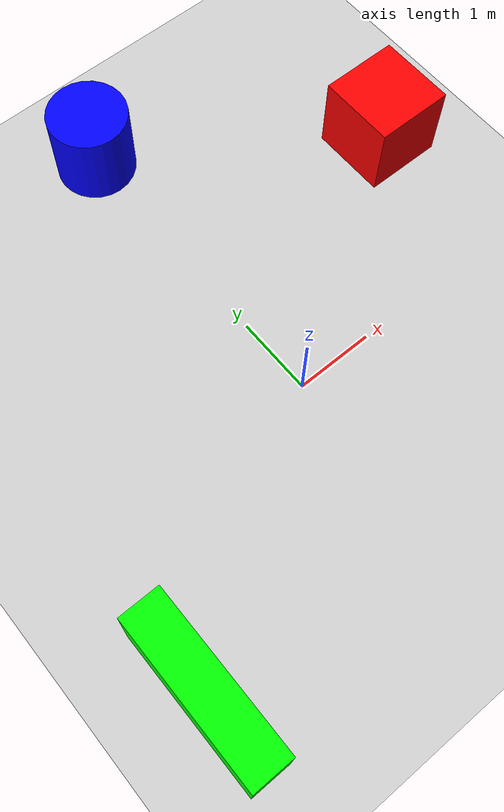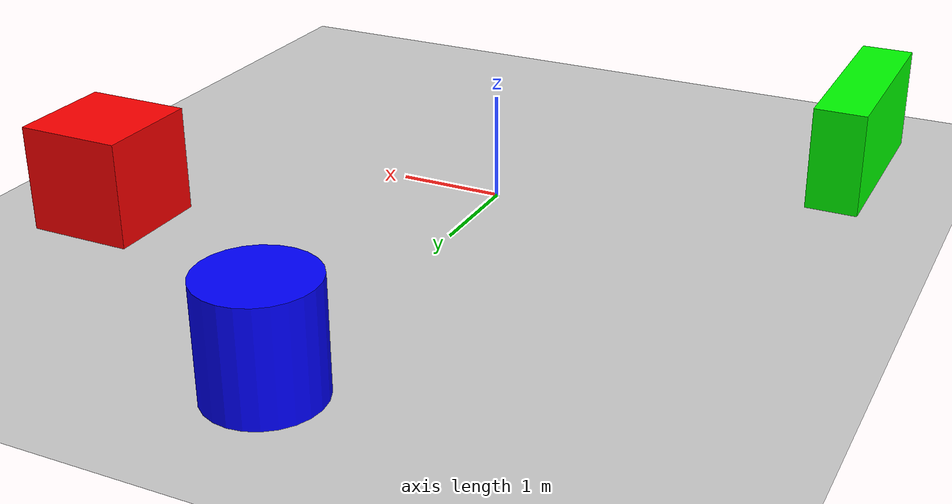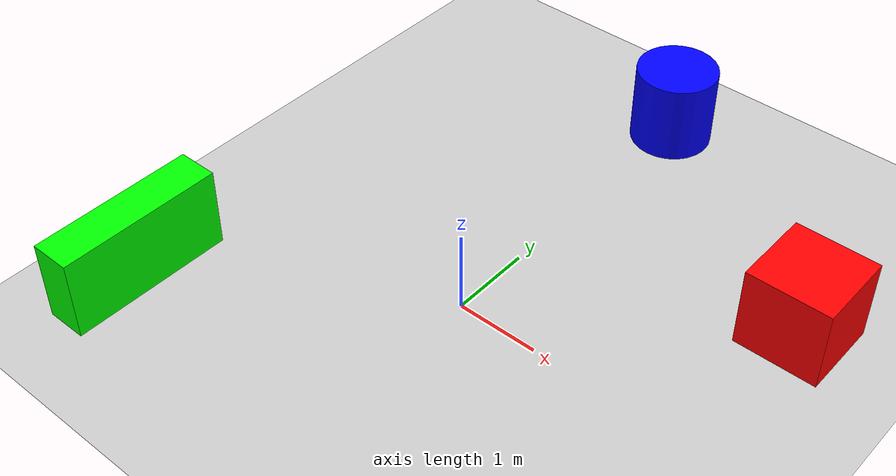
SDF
<?xml version="1.0" ?>
<sdf version="1.9">
  <world name="smartmbot_world">

    <!-- Physics -->
    <physics name="1ms" type="ignored">
      <max_step_size>0.001</max_step_size>
      <real_time_factor>1.0</real_time_factor>
    </physics>

    <!-- Plugins -->
    <plugin filename="gz-sim-physics-system" name="gz::sim::systems::Physics">
    </plugin>
    <plugin filename="gz-sim-user-commands-system" name="gz::sim::systems::UserCommands">
    </plugin>
    <plugin filename="gz-sim-scene-broadcaster-system" name="gz::sim::systems::SceneBroadcaster">
    </plugin>

    <!-- Scene -->
    <scene>
      <ambient>0.4 0.4 0.4 1.0</ambient>
      <background>0.7 0.7 0.7 1.0</background>
      <shadows>true</shadows>
    </scene>

    <!-- Light -->
    <light type="directional" name="sun">
      <cast_shadows>true</cast_shadows>
      <pose>0 0 10 0 0 0</pose>
      <diffuse>0.8 0.8 0.8 1</diffuse>
      <specular>0.2 0.2 0.2 1</specular>
      <attenuation>
        <range>1000</range>
        <constant>0.9</constant>
        <linear>0.01</linear>
        <quadratic>0.001</quadratic>
      </attenuation>
      <direction>-0.5 0.1 -0.9</direction>
    </light>

    <!-- Ground plane -->
    <model name="ground_plane">
      <static>true</static>
      <link name="link">
        <collision name="collision">
          <geometry>
            <plane>
              <normal>0 0 1</normal>
              <size>100 100</size>
            </plane>
          </geometry>
        </collision>
        <visual name="visual">
          <geometry>
            <plane>
              <normal>0 0 1</normal>
              <size>100 100</size>
            </plane>
          </geometry>
          <material>
            <ambient>0.8 0.8 0.8 1</ambient>
            <diffuse>0.8 0.8 0.8 1</diffuse>
            <specular>0 0 0 1</specular>
          </material>
        </visual>
      </link>
    </model>

    <!-- Some obstacles for navigation testing -->
    <model name="box1">
      <pose>3 2 0.5 0 0 0</pose>
      <static>true</static>
      <link name="link">
        <collision name="collision">
          <geometry>
            <box>
              <size>1 1 1</size>
            </box>
          </geometry>
        </collision>
        <visual name="visual">
          <geometry>
            <box>
              <size>1 1 1</size>
            </box>
          </geometry>
          <material>
            <ambient>1 0 0 1</ambient>
            <diffuse>1 0 0 1</diffuse>
          </material>
        </visual>
      </link>
    </model>

    <model name="box2">
      <pose>-3 -2 0.5 0 0 0</pose>
      <static>true</static>
      <link name="link">
        <collision name="collision">
          <geometry>
            <box>
              <size>0.5 2 1</size>
            </box>
          </geometry>
        </collision>
        <visual name="visual">
          <geometry>
            <box>
              <size>0.5 2 1</size>
            </box>
          </geometry>
          <material>
            <ambient>0 1 0 1</ambient>
            <diffuse>0 1 0 1</diffuse>
          </material>
        </visual>
      </link>
    </model>

    <model name="cylinder1">
      <pose>0 4 0.5 0 0 0</pose>
      <static>true</static>
      <link name="link">
        <collision name="collision">
          <geometry>
            <cylinder>
              <radius>0.5</radius>
              <length>1</length>
            </cylinder>
          </geometry>
        </collision>
        <visual name="visual">
          <geometry>
            <cylinder>
              <radius>0.5</radius>
              <length>1</length>
            </cylinder>
          </geometry>
          <material>
            <ambient>0 0 1 1</ambient>
            <diffuse>0 0 1 1</diffuse>
          </material>
        </visual>
      </link>
    </model>

  </world>
</sdf>
